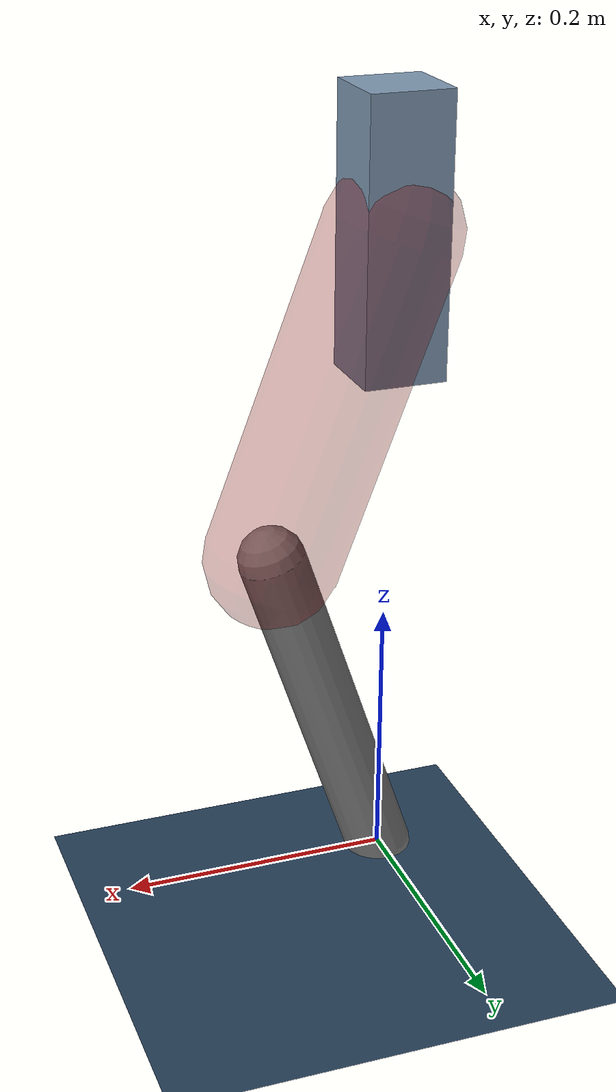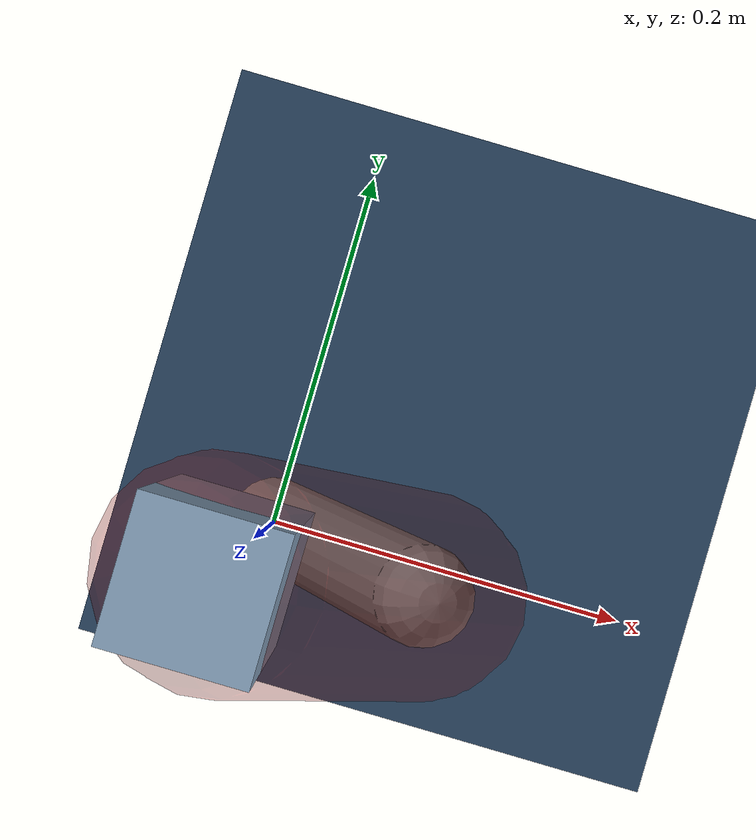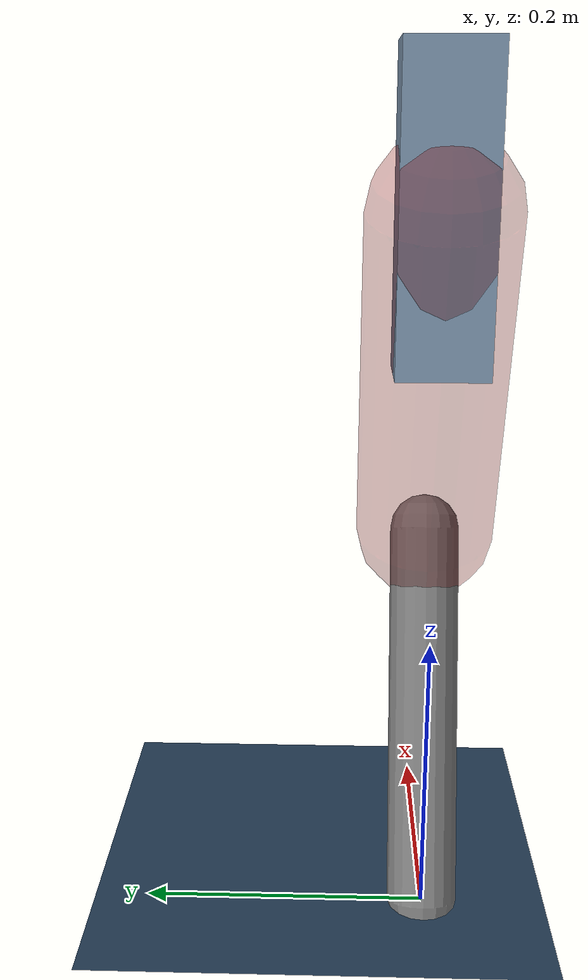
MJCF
<mujoco model="Hopper2D">
	<compiler inertiafromgeom="true" angle="radian" />
	<option timestep="0.001" integrator="implicit" cone="elliptic" solver="Newton" tolerance="1e-10" />

	<default>
		<geom contype="1" conaffinity="1" condim="3" friction="2 0.005 0.0001" solref="0.005 1" />
		<joint limited="true" damping="0.1" />
	</default>

	<asset>
		<texture name="skybox" type="skybox" builtin="gradient" rgb1=".4 .6 .8" rgb2="0 0 0" width="800" height="800" />
		<texture name="grid" type="2d" builtin="checker" rgb1=".1 .2 .3" rgb2=".2 .3 .4" width="300" height="300" mark="edge" markrgb=".2 .3 .4" />
		<material name="ground" texture="grid" texrepeat="1 1" texuniform="true" reflectance="0.1" />
		<material name="leg" rgba="0.5 0.6 0.7 1" />
	</asset>

	<worldbody>

		<geom name="floor" type="plane" size="5 5 0.25" material="ground" />

		<light directional="false" diffuse="0.8 0.8 0.8" specular="0.3 0.3 0.3" pos="0 0 2" dir="0 0 -1" />
		<light mode="targetbodycom" target="base" directional="false" diffuse="0.8 0.8 0.8" specular="0.3 0.3 0.3" pos="0 0 2" dir="0 0 -1" />

		<camera name="fixed" pos="0 -2 1" xyaxes="1 0 0 0 0 1" />
		<camera name="tracking" mode="trackcom" pos="0 -3 1" />

		<body name="root" pos="0 0 0.48758898316327615">
			<joint name="slide_x" type="slide" axis="1 0 0" range="-100 100" />
			<joint name="slide_z" type="slide" axis="0 0 1" range="0 10" />

			<body name="base" pos="0 0 0">
				<geom name="torso" type="box" size="0.03 0.03 0.1" mass="3.315" material="leg" />

				<body name="link1" pos="0 0 0" euler="0 1.209516607396344 0">
					<joint type="hinge" axis="0 -1 0" pos="0 0 0" name="hinge1" limited="true" range="-3.14 3.14" stiffness="0" damping="0.1" />
					<geom name="thigh" type="capsule" fromto="0 0 0 0.24668457834440122 0 0" size="0.05" rgba="0.5 0 0 0.3" mass="0.8477799036954432" />

					<body name="link2" pos="0.24668457834440122 0 0" euler="0 0.6885788070500217 0">
						<joint type="hinge" axis="0 -1 0" pos="0 0 0" name="hinge2" limited="true" range="-3.14 3.14" stiffness="0" damping="0.1" />
						<geom name="shank" type="capsule" fromto="0 0 0 0.2712274178649655 0 0" size="0.025" mass="0.45998193429197237" />

					</body>
				</body>
			</body>
		</body>
	</worldbody>

	<actuator>
		<motor name="torque1" joint="hinge1" ctrlrange="-93.23914820683183 93.23914820683183" ctrllimited="true" gear="1" />
		<motor name="torque2" joint="hinge2" ctrlrange="-153.74092484642733 153.74092484642733" ctrllimited="true" gear="1" />
	</actuator>
</mujoco>
